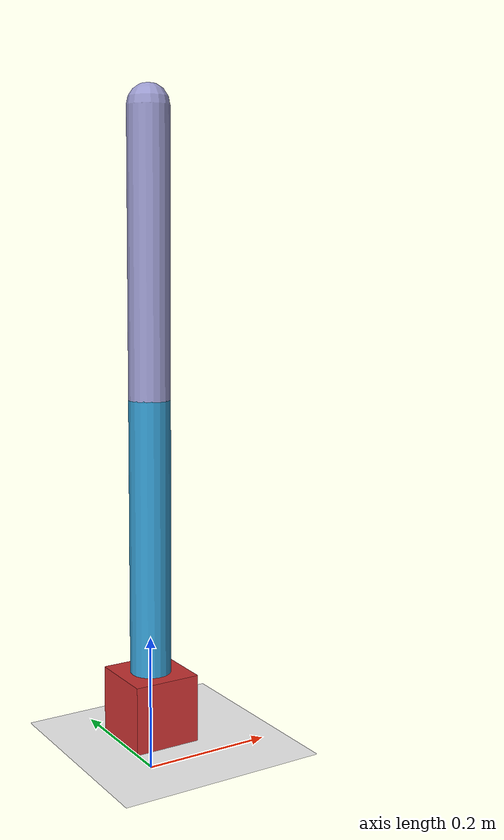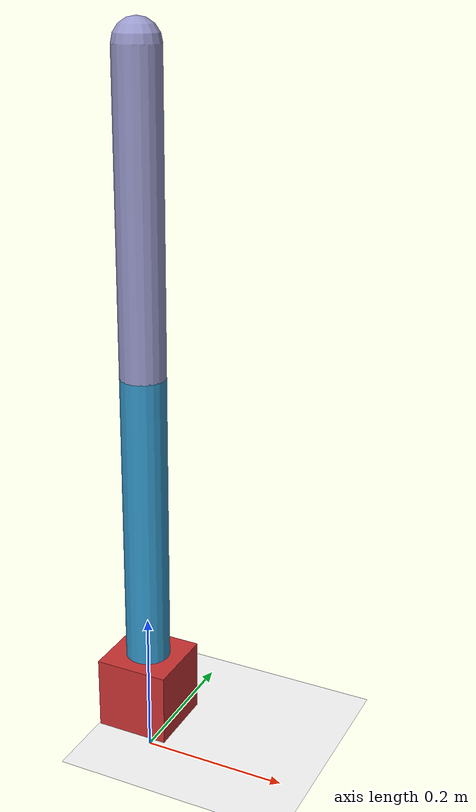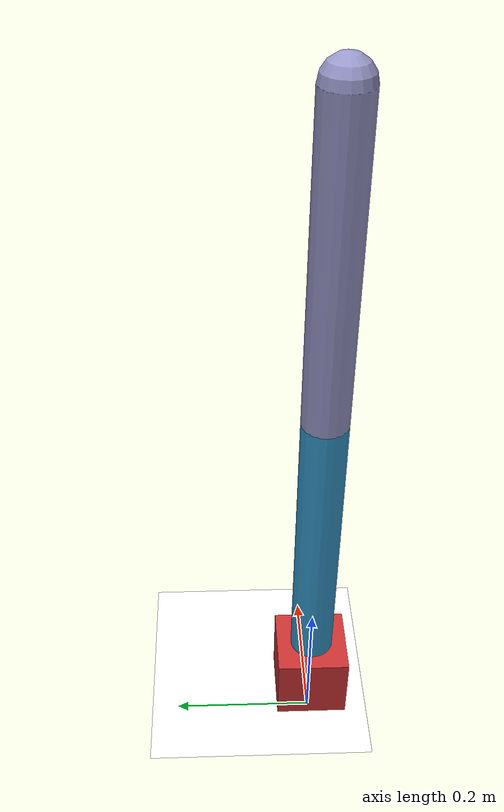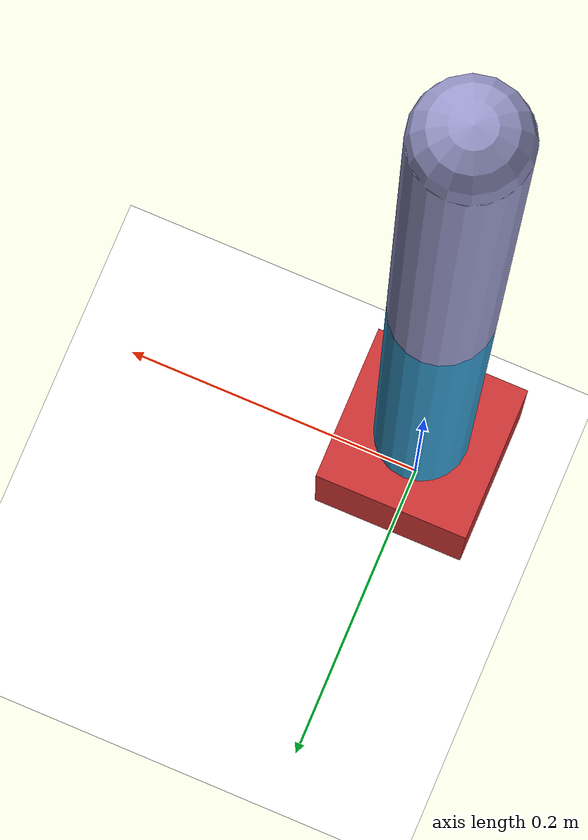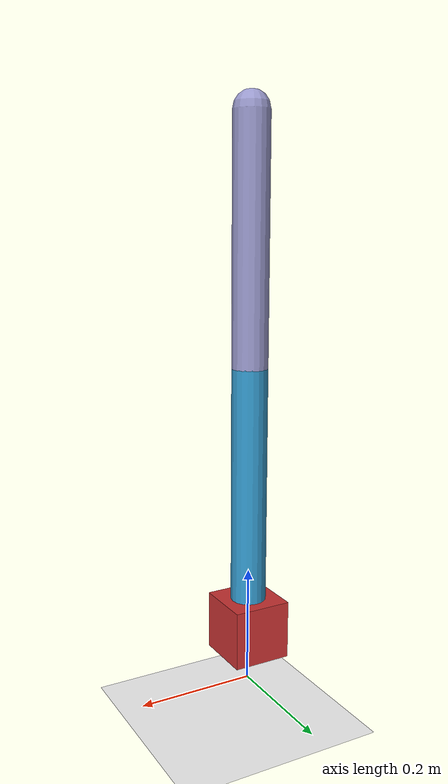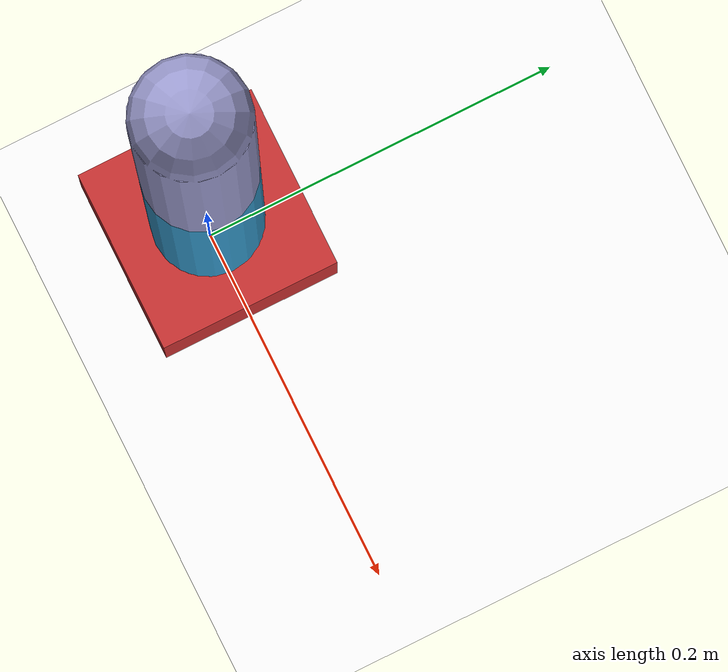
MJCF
<mujoco model="first_model">
    <compiler angle="degree" autolimits="true"/>
    <option timestep="0.002" gravity="0 0 -9.81"/>

    <default>
        <geom rgba="0.7 0.7 0.7 1" contype="1" conaffinity="1"/>
        <joint damping="1"/>
    </default>

    <worldbody>
        <!-- 地面 -->
        <geom name="ground" type="plane" size="5 5 0.1" pos="0 0 0"
              rgba="1 1 1 1"/>

        <!-- 基座 -->
        <body name="base" pos="0 0 0.1">
            <geom name="base_geom" type="box" size="0.05 0.05 0.05"
                  rgba="0.8 0.2 0.2 1"/>

            <!-- 摆杆 -->
            <body name="link1" pos="0 0 0.05">
                <joint name="hinge1" type="hinge" axis="0 1 0" range="-90 90"/>
                <geom name="link1_geom" type="capsule" fromto="0 0 0 0 0 0.4"
                      size="0.03" rgba="0.2 0.6 0.8 1"/>

                <body name="link2" pos="0 0 0.4">
                    <joint name="hinge2" type="hinge" axis="0 1 0" range="-90 90"/>
                    <geom name="link2_geom" type="capsule" fromto="0 0 0 0 0 0.4"
                        size="0.03" rgba="0.6 0.6 0.8 1"/>
                </body>

            </body>
        </body>
    </worldbody>

    <actuator>
        <motor name="m1" joint="hinge1" ctrlrange="-1 1" gear="50"/>
        <motor name="m2" joint="hinge2" ctrlrange="-1 1" gear="50"/>
    </actuator>
</mujoco>
